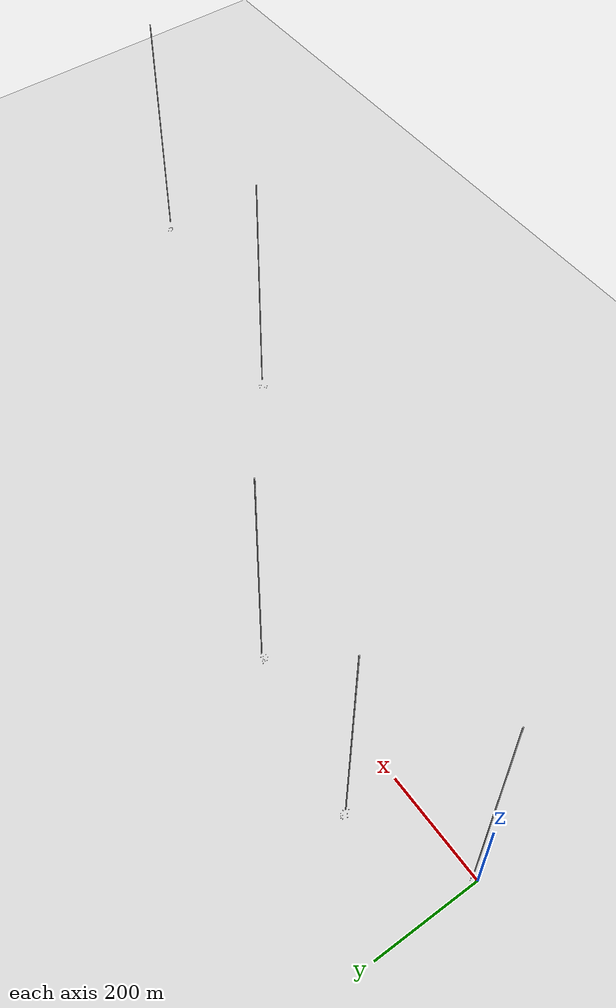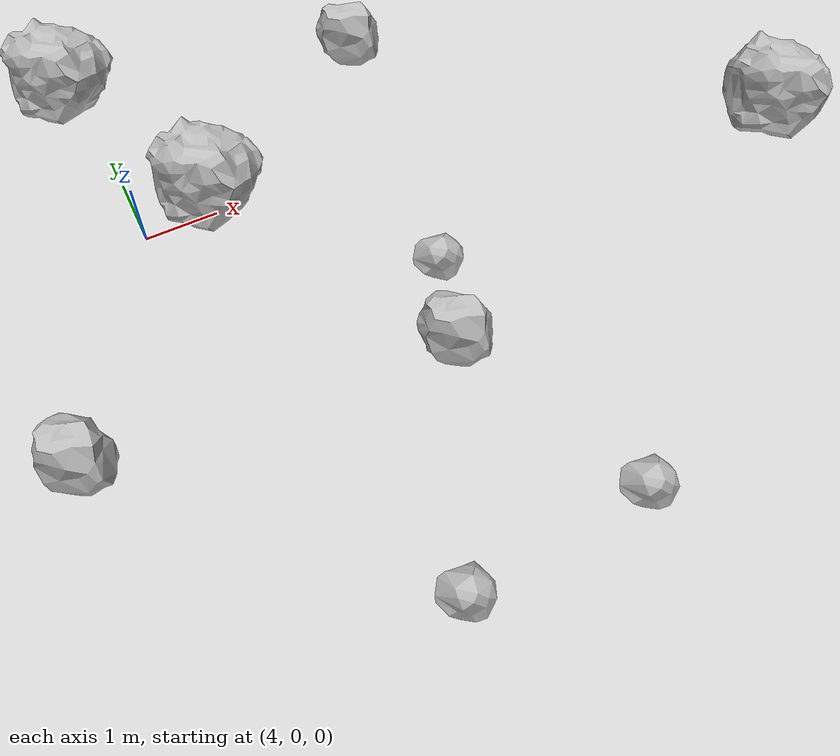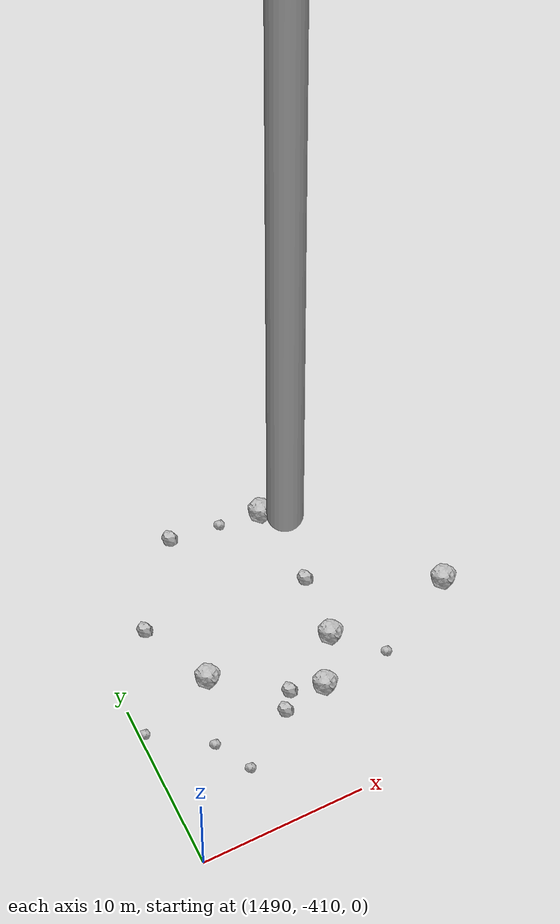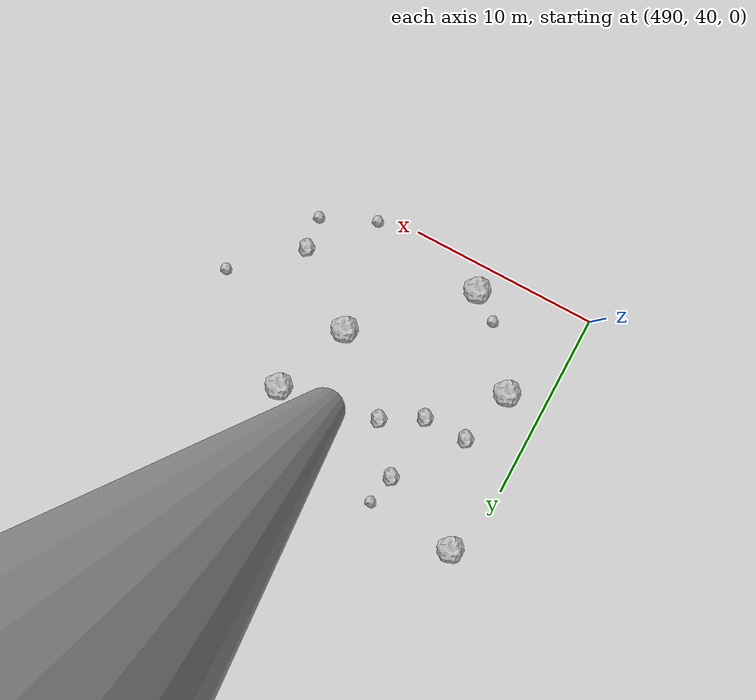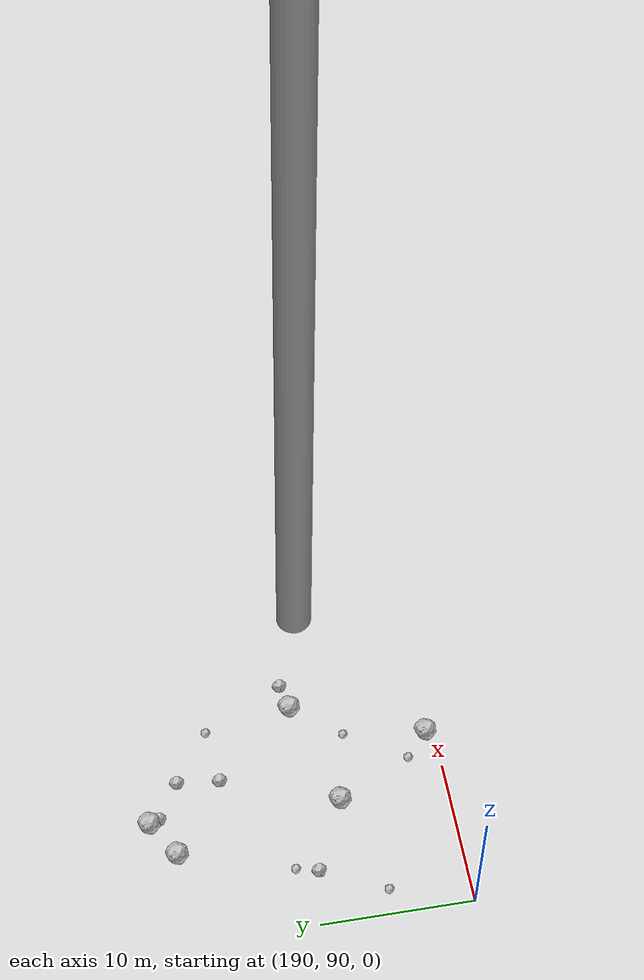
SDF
<?xml version="1.0" ?>
<sdf version="1.6">
  <world name="default">

    <include>
      <uri>model://custom_ground</uri>
    </include>

    <include>
      <uri>model://sun</uri>
    </include>

    <spherical_coordinates>
      <surface_model>EARTH_WGS84</surface_model>
      <latitude_deg>38.161479</latitude_deg>
      <longitude_deg>-122.454630</longitude_deg>
      <elevation>488.0</elevation>
      <heading_deg>90</heading_deg>
    </spherical_coordinates>

    <model name="rock1_0_0">
      <include>
        <uri>model://rock1</uri>
        <pose>12.90994441873085 -1.7434787198118968 0.5 0 0 0</pose>
      </include>
    </model>
    <model name="rock1_0_1">
      <include>
        <uri>model://rock1</uri>
        <pose>3.829475442123822 2.9690899275554727 0.5 0 0 0</pose>
      </include>
    </model>
    <model name="rock1_0_2">
      <include>
        <uri>model://rock1</uri>
        <pose>5.068677245461643 0.2691815931657473 0.5 0 0 0</pose>
      </include>
    </model>
    <model name="rock1_0_3">
      <include>
        <uri>model://rock1</uri>
        <pose>8.895014178366637 5.764157527504297 0.5 0 0 0</pose>
      </include>
    </model>
    <model name="rock1_0_4">
      <include>
        <uri>model://rock1</uri>
        <pose>14.045176004087061 -7.285475884076666 0.5 0 0 0</pose>
      </include>
    </model>
    <model name="rock2_0_0">
      <include>
        <uri>model://rock2</uri>
        <pose>18.097329669979743 0.1191586169742127 0.3 0 0 0</pose>
      </include>
    </model>
    <model name="rock2_0_1">
      <include>
        <uri>model://rock2</uri>
        <pose>7.968333472663738 2.1430506684268043 0.3 0 0 0</pose>
      </include>
    </model>
    <model name="rock2_0_2">
      <include>
        <uri>model://rock2</uri>
        <pose>6.963181412447459 -3.1339279266388225 0.3 0 0 0</pose>
      </include>
    </model>
    <model name="rock2_0_3">
      <include>
        <uri>model://rock2</uri>
        <pose>2.2877728290580968 -2.718236492446464 0.3 0 0 0</pose>
      </include>
    </model>
    <model name="rock2_0_4">
      <include>
        <uri>model://rock2</uri>
        <pose>7.44834878394363 9.31300897201001 0.3 0 0 0</pose>
      </include>
    </model>
    <model name="rock3_0_0">
      <include>
        <uri>model://rock3</uri>
        <pose>14.888132127987337 4.198253363248231 0.2 0 0 0</pose>
      </include>
    </model>
    <model name="rock3_0_1">
      <include>
        <uri>model://rock3</uri>
        <pose>5.525860945717889 -6.021009593246038 0.2 0 0 0</pose>
      </include>
    </model>
    <model name="rock3_0_2">
      <include>
        <uri>model://rock3</uri>
        <pose>17.175702617972 -5.017943434592864 0.2 0 0 0</pose>
      </include>
    </model>
    <model name="rock3_0_3">
      <include>
        <uri>model://rock3</uri>
        <pose>7.295445387828043 -2.0773256824988984 0.2 0 0 0</pose>
      </include>
    </model>
    <model name="rock3_0_4">
      <include>
        <uri>model://rock3</uri>
        <pose>7.961730177783332 -5.840078092536141 0.2 0 0 0</pose>
      </include>
    </model>
    <model name="rock1_1_0">
      <include>
        <uri>model://rock1</uri>
        <pose>198.59352411203741 97.16461957040221 0.5 0 0 0</pose>
      </include>
    </model>
    <model name="rock1_1_1">
      <include>
        <uri>model://rock1</uri>
        <pose>196.3887072515642 108.22287487989122 0.5 0 0 0</pose>
      </include>
    </model>
    <model name="rock1_1_2">
      <include>
        <uri>model://rock1</uri>
        <pose>202.7437438138176 90.63308709680221 0.5 0 0 0</pose>
      </include>
    </model>
    <model name="rock1_1_3">
      <include>
        <uri>model://rock1</uri>
        <pose>206.0544712282051 99.30402599681044 0.5 0 0 0</pose>
      </include>
    </model>
    <model name="rock1_1_4">
      <include>
        <uri>model://rock1</uri>
        <pose>198.85021528244957 109.6978312341426 0.5 0 0 0</pose>
      </include>
    </model>
    <model name="rock2_1_0">
      <include>
        <uri>model://rock2</uri>
        <pose>201.56625344066995 107.53738437021379 0.3 0 0 0</pose>
      </include>
    </model>
    <model name="rock2_1_1">
      <include>
        <uri>model://rock2</uri>
        <pose>201.27637231851412 104.72979771220805 0.3 0 0 0</pose>
      </include>
    </model>
    <model name="rock2_1_2">
      <include>
        <uri>model://rock2</uri>
        <pose>193.71117833378096 99.43273125124671 0.3 0 0 0</pose>
      </include>
    </model>
    <model name="rock2_1_3">
      <include>
        <uri>model://rock2</uri>
        <pose>199.07954605503184 109.05097332806085 0.3 0 0 0</pose>
      </include>
    </model>
    <model name="rock2_1_4">
      <include>
        <uri>model://rock2</uri>
        <pose>207.81567556671567 99.65409826978215 0.3 0 0 0</pose>
      </include>
    </model>
    <model name="rock3_1_0">
      <include>
        <uri>model://rock3</uri>
        <pose>205.0488697247778 105.08779433852342 0.2 0 0 0</pose>
      </include>
    </model>
    <model name="rock3_1_1">
      <include>
        <uri>model://rock3</uri>
        <pose>191.67722944207597 95.22201933535737 0.2 0 0 0</pose>
      </include>
    </model>
    <model name="rock3_1_2">
      <include>
        <uri>model://rock3</uri>
        <pose>194.08471743491853 100.84592929054412 0.2 0 0 0</pose>
      </include>
    </model>
    <model name="rock3_1_3">
      <include>
        <uri>model://rock3</uri>
        <pose>203.4145794006836 96.059201491999 0.2 0 0 0</pose>
      </include>
    </model>
    <model name="rock3_1_4">
      <include>
        <uri>model://rock3</uri>
        <pose>200.94649059231637 92.11224426251766 0.2 0 0 0</pose>
      </include>
    </model>
    <model name="rock1_2_0">
      <include>
        <uri>model://rock1</uri>
        <pose>495.9485375053918 41.2565841173595 0.5 0 0 0</pose>
      </include>
    </model>
    <model name="rock1_2_1">
      <include>
        <uri>model://rock1</uri>
        <pose>490.97549178787904 53.78864277335673 0.5 0 0 0</pose>
      </include>
    </model>
    <model name="rock1_2_2">
      <include>
        <uri>model://rock1</uri>
        <pose>502.76567245395387 50.418274919938014 0.5 0 0 0</pose>
      </include>
    </model>
    <model name="rock1_2_3">
      <include>
        <uri>model://rock1</uri>
        <pose>492.11502220677716 45.26975383549815 0.5 0 0 0</pose>
      </include>
    </model>
    <model name="rock1_2_4">
      <include>
        <uri>model://rock1</uri>
        <pose>501.107380814241 46.23499133944815 0.5 0 0 0</pose>
      </include>
    </model>
    <model name="rock2_2_0">
      <include>
        <uri>model://rock2</uri>
        <pose>504.79293235124305 43.401455035288926 0.3 0 0 0</pose>
      </include>
    </model>
    <model name="rock2_2_1">
      <include>
        <uri>model://rock2</uri>
        <pose>495.2702283926158 48.37116674169211 0.3 0 0 0</pose>
      </include>
    </model>
    <model name="rock2_2_2">
      <include>
        <uri>model://rock2</uri>
        <pose>492.89706892182835 48.38406793880379 0.3 0 0 0</pose>
      </include>
    </model>
    <model name="rock2_2_3">
      <include>
        <uri>model://rock2</uri>
        <pose>495.42018502971985 51.91159550575813 0.3 0 0 0</pose>
      </include>
    </model>
    <model name="rock2_2_4">
      <include>
        <uri>model://rock2</uri>
        <pose>497.37579622283255 49.539306495827795 0.3 0 0 0</pose>
      </include>
    </model>
    <model name="rock3_2_0">
      <include>
        <uri>model://rock3</uri>
        <pose>502.1173062772699 40.453489431410276 0.2 0 0 0</pose>
      </include>
    </model>
    <model name="rock3_2_1">
      <include>
        <uri>model://rock3</uri>
        <pose>495.7336921664832 53.527502476771474 0.2 0 0 0</pose>
      </include>
    </model>
    <model name="rock3_2_2">
      <include>
        <uri>model://rock3</uri>
        <pose>494.4307127289056 42.30642240529964 0.2 0 0 0</pose>
      </include>
    </model>
    <model name="rock3_2_3">
      <include>
        <uri>model://rock3</uri>
        <pose>504.92122640945485 41.67952023581514 0.2 0 0 0</pose>
      </include>
    </model>
    <model name="rock3_2_4">
      <include>
        <uri>model://rock3</uri>
        <pose>507.960915272019 46.27733818368769 0.2 0 0 0</pose>
      </include>
    </model>
    <model name="rock1_3_0">
      <include>
        <uri>model://rock1</uri>
        <pose>1003.4088484943005 -299.6612039199648 0.5 0 0 0</pose>
      </include>
    </model>
    <model name="rock1_3_1">
      <include>
        <uri>model://rock1</uri>
        <pose>999.0312006664138 -293.19855227698383 0.5 0 0 0</pose>
      </include>
    </model>
    <model name="rock1_3_2">
      <include>
        <uri>model://rock1</uri>
        <pose>1004.6746312826707 -296.17482130412196 0.5 0 0 0</pose>
      </include>
    </model>
    <model name="rock1_3_3">
      <include>
        <uri>model://rock1</uri>
        <pose>994.6407182046628 -307.57744217244857 0.5 0 0 0</pose>
      </include>
    </model>
    <model name="rock1_3_4">
      <include>
        <uri>model://rock1</uri>
        <pose>991.3689113987567 -303.72169507334365 0.5 0 0 0</pose>
      </include>
    </model>
    <model name="rock2_3_0">
      <include>
        <uri>model://rock2</uri>
        <pose>999.0890405909372 -293.53611973930134 0.3 0 0 0</pose>
      </include>
    </model>
    <model name="rock2_3_1">
      <include>
        <uri>model://rock2</uri>
        <pose>997.7804649458009 -301.5570464622893 0.3 0 0 0</pose>
      </include>
    </model>
    <model name="rock2_3_2">
      <include>
        <uri>model://rock2</uri>
        <pose>999.6196280880412 -309.0301724014559 0.3 0 0 0</pose>
      </include>
    </model>
    <model name="rock2_3_3">
      <include>
        <uri>model://rock2</uri>
        <pose>994.3265234907974 -301.592677528942 0.3 0 0 0</pose>
      </include>
    </model>
    <model name="rock2_3_4">
      <include>
        <uri>model://rock2</uri>
        <pose>1003.5753189202235 -308.8933384576485 0.3 0 0 0</pose>
      </include>
    </model>
    <model name="rock3_3_0">
      <include>
        <uri>model://rock3</uri>
        <pose>990.9777979122683 -297.9642734151411 0.2 0 0 0</pose>
      </include>
    </model>
    <model name="rock3_3_1">
      <include>
        <uri>model://rock3</uri>
        <pose>1002.8909742365722 -300.3795711390694 0.2 0 0 0</pose>
      </include>
    </model>
    <model name="rock3_3_2">
      <include>
        <uri>model://rock3</uri>
        <pose>1003.4886819248275 -295.27238136333284 0.2 0 0 0</pose>
      </include>
    </model>
    <model name="rock3_3_3">
      <include>
        <uri>model://rock3</uri>
        <pose>1004.8679055735133 -295.37792444694514 0.2 0 0 0</pose>
      </include>
    </model>
    <model name="rock3_3_4">
      <include>
        <uri>model://rock3</uri>
        <pose>1005.1442230587136 -297.25568174525887 0.2 0 0 0</pose>
      </include>
    </model>
    <model name="rock1_4_0">
      <include>
        <uri>model://rock1</uri>
        <pose>1509.9275184843134 -400.6209369015265 0.5 0 0 0</pose>
      </include>
    </model>
    <model name="rock1_4_1">
      <include>
        <uri>model://rock1</uri>
        <pose>1500.9386285079604 -403.43404799772117 0.5 0 0 0</pose>
      </include>
    </model>
    <model name="rock1_4_2">
      <include>
        <uri>model://rock1</uri>
        <pose>1495.0465349460626 -400.1347604601919 0.5 0 0 0</pose>
      </include>
    </model>
    <model name="rock1_4_3">
      <include>
        <uri>model://rock1</uri>
        <pose>1502.5745607112847 -400.80865330065336 0.5 0 0 0</pose>
      </include>
    </model>
    <model name="rock1_4_4">
      <include>
        <uri>model://rock1</uri>
        <pose>1502.2404164013683 -392.3105225756525 0.5 0 0 0</pose>
      </include>
    </model>
    <model name="rock2_4_0">
      <include>
        <uri>model://rock2</uri>
        <pose>1502.726159792622 -397.1049729199365 0.3 0 0 0</pose>
      </include>
    </model>
    <model name="rock2_4_1">
      <include>
        <uri>model://rock2</uri>
        <pose>1493.027354411184 -395.93516531083594 0.3 0 0 0</pose>
      </include>
    </model>
    <model name="rock2_4_2">
      <include>
        <uri>model://rock2</uri>
        <pose>1496.7532211834553 -391.4910118550638 0.3 0 0 0</pose>
      </include>
    </model>
    <model name="rock2_4_3">
      <include>
        <uri>model://rock2</uri>
        <pose>1498.1857878656538 -403.85070779752334 0.3 0 0 0</pose>
      </include>
    </model>
    <model name="rock2_4_4">
      <include>
        <uri>model://rock2</uri>
        <pose>1498.913108910513 -402.88751561696597 0.3 0 0 0</pose>
      </include>
    </model>
    <model name="rock3_4_0">
      <include>
        <uri>model://rock3</uri>
        <pose>1494.844191759293 -406.1354550528218 0.2 0 0 0</pose>
      </include>
    </model>
    <model name="rock3_4_1">
      <include>
        <uri>model://rock3</uri>
        <pose>1493.636041768544 -403.97571323171996 0.2 0 0 0</pose>
      </include>
    </model>
    <model name="rock3_4_2">
      <include>
        <uri>model://rock3</uri>
        <pose>1504.9529221153598 -403.19426445641 0.2 0 0 0</pose>
      </include>
    </model>
    <model name="rock3_4_3">
      <include>
        <uri>model://rock3</uri>
        <pose>1490.280538499251 -401.6745524658103 0.2 0 0 0</pose>
      </include>
    </model>
    <model name="rock3_4_4">
      <include>
        <uri>model://rock3</uri>
        <pose>1499.695988702379 -391.9941323190371 0.2 0 0 0</pose>
      </include>
    </model>

    <model name="cylinder_1">
      <static>true</static>
      <link name="link">
        <visual name="visual">
          <geometry>
            <cylinder>
              <radius>1</radius>
              <length>500</length>
            </cylinder>
          </geometry>
        </visual>
      </link>
      <pose>10 0 270 0 0 0</pose>
    </model>

    <model name="cylinder_2">
      <static>true</static>
      <link name="link">
        <visual name="visual">
          <geometry>
            <cylinder>
              <radius>1</radius>
              <length>500</length>
            </cylinder>
          </geometry>
        </visual>
      </link>
      <pose>200 100 270 0 0 0</pose>
    </model>

    <model name="cylinder_3">
      <static>true</static>
      <link name="link">
        <visual name="visual">
          <geometry>
            <cylinder>
              <radius>1</radius>
              <length>500</length>
            </cylinder>
          </geometry>
        </visual>
      </link>
      <pose>500 50 270 0 0 0</pose>
    </model>

    <model name="cylinder_4">
      <static>true</static>
      <link name="link">
        <visual name="visual">
          <geometry>
            <cylinder>
              <radius>1</radius>
              <length>500</length>
            </cylinder>
          </geometry>
        </visual>
      </link>
      <pose>1000 -300 270 0 0 0</pose>
    </model>

    <model name="cylinder_5">
      <static>true</static>
      <link name="link">
        <visual name="visual">
          <geometry>
            <cylinder>
              <radius>1</radius>
              <length>500</length>
            </cylinder>
          </geometry>
        </visual>
      </link>
      <pose>1500 -400 270 0 0 0</pose>
    </model>

  </world>
</sdf>

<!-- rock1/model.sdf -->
<sdf version="1.6">
  <model name="rock1">
    <static>true</static> <!-- Set to true if the model should not move -->
    <pose>0 0 0 0 0 0</pose>

    <!--z offset is 0.5 for full scale-->

    <link name="link">
      <collision name="rock1_collision">
        <geometry>
          <mesh>
            <uri>model://meshes/rock1.dae</uri>
          </mesh>
        </geometry>
      </collision>
      <visual name="rock1_visual">
        <geometry>
          <mesh>
            <uri>model://meshes/rock1.dae</uri>
          </mesh>
        </geometry>
        <material>
          <script>
            <uri>model://materials/scripts/sand_pebbles.material</uri>
            <name>custom_ground/Image</name>
          </script>
        </material>
      </visual>
    </link>
  </model>
</sdf>

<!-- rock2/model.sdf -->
<sdf version="1.6">
  <model name="rock2">
    <static>true</static> <!-- Set to true if the model should not move -->
    <pose>0 0 0 0 0 0</pose>

    <!--z offset is 0.3 for full scale-->

    <link name="link">
      <collision name="rock2_collision">
        <geometry>
          <mesh>
            <uri>model://meshes/rock2.dae</uri>
          </mesh>
        </geometry>
      </collision>
      <visual name="rock2_visual">
        <geometry>
          <mesh>
            <uri>model://meshes/rock2.dae</uri>
          </mesh>
        </geometry>
        <material>
          <script>
            <uri>model://materials/scripts/sand_pebbles.material</uri>
            <name>custom_ground/Image</name>
          </script>
        </material>
      </visual>
    </link>
  </model>
</sdf>

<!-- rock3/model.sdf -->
<sdf version="1.6">
  <model name="rock3">
    <static>true</static> <!-- Set to true if the model should not move -->
    <pose>0 0 0 0 0 0</pose>

    <!--z offset is 0.2 for full scale-->

    <link name="link">
      <collision name="rock3_collision">
        <geometry>
          <mesh>
            <uri>model://meshes/rock3.dae</uri>
          </mesh>
        </geometry>
      </collision>
      <visual name="rock3_visual">
        <geometry>
          <mesh>
            <uri>model://meshes/rock3.dae</uri>
          </mesh>
        </geometry>
        <material>
          <script>
            <uri>model://materials/scripts/sand_pebbles.material</uri>
            <name>custom_ground/Image</name>
          </script>
        </material>
      </visual>
    </link>
  </model>
</sdf>

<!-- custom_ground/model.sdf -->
<sdf version="1.6">
  <model name="custom_ground">
    <static>true</static> <!-- Ground is static and immovable -->
    <link name="ground_link">
      <pose>240 0 0 0 0 0</pose> <!-- Position and orientation relative to the world -->
      <!-- Visual Representation -->
      <visual name="ground_visual">
        <geometry>
          <plane>
            <normal>0 0 1</normal> <!-- Upward facing plane -->
            <size>500 500</size> <!-- Size of the plane -->
          </plane>
        </geometry>
        <material>
          <script>
            <uri>model://materials/scripts/sand_pebbles.material</uri>
            <name>custom_ground/Image</name>
          </script>
        </material>
      </visual>

      <!-- Collision Representation -->
      <collision name="ground_collision">
        <geometry>
          <plane>
            <normal>0 0 1</normal>
            <size>100 100</size>
          </plane>
        </geometry>
      </collision>

    </link>
  </model>
</sdf>
